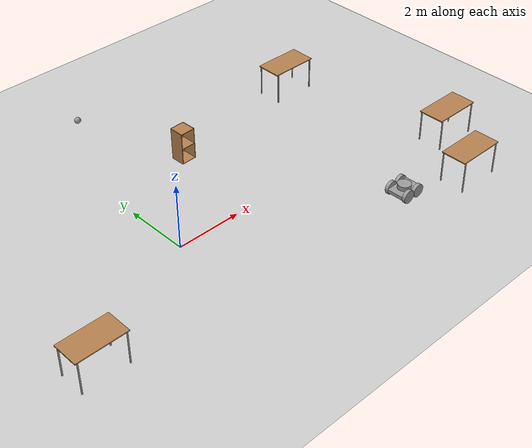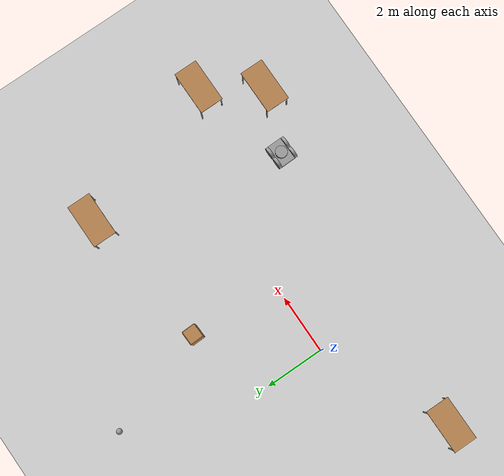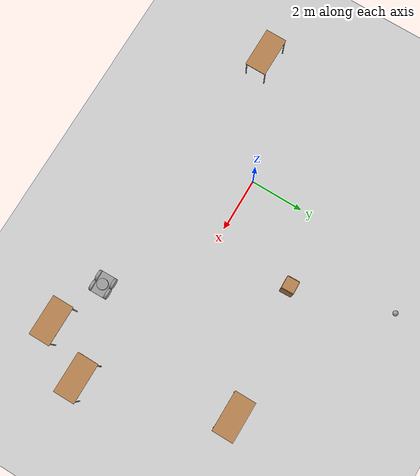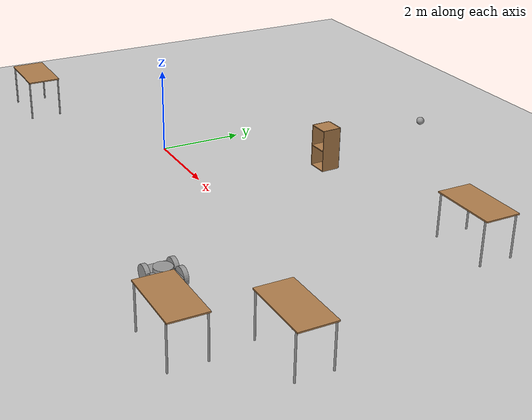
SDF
<sdf version="1.6">
 <world name="default">
  <model name="ground_plane">
   <static>1</static>
   <link name="link">
    <collision name="collision">
     <geometry><plane><normal>0 0 1</normal><size>100 100</size></plane></geometry>
     <surface><friction><ode><mu>100</mu><mu2>50</mu2></ode></friction></surface>
    </collision>
    <visual name="visual">
     <cast_shadows>0</cast_shadows>
     <geometry><plane><normal>0 0 1</normal><size>100 100</size></plane></geometry>
     <material>
      <script><uri>file://media/materials/scripts/gazebo.material</uri><name>Gazebo/Grey</name></script>
     </material>
    </visual>
   </link>
  </model>
  <model name="HumanoidRobot_0">
   <link name="link_15">
    <pose>0 0 -0.014438 0 -0 0</pose>
    <inertial>
     <mass>1</mass>
     <inertia>
      <ixx>0.166667</ixx>
      <ixy>0</ixy>
      <ixz>0</ixz>
      <iyy>0.166667</iyy>
      <iyz>0</iyz>
      <izz>0.166667</izz>
     </inertia>
    </inertial>
    <visual name="visual">
     <geometry><box><size>0.8 0.5 0.1</size></box></geometry>
     <material>
      <lighting>1</lighting>
      <script><uri>file://media/materials/scripts/gazebo.material</uri><name>Gazebo/Grey</name></script>
      <shader type="pixel"><normal_map>__default__</normal_map></shader>
      <ambient>0.3 0.3 0.3 1</ambient>
      <diffuse>0.7 0.7 0.7 1</diffuse>
      <specular>0.01 0.01 0.01 1</specular>
      <emissive>0 0 0 1</emissive>
     </material>
    </visual>
    <collision name="collision">
     <geometry><box><size>0.8 0.5 0.1</size></box></geometry>
     <surface>
      <friction>
       <ode><mu>1</mu><mu2>1</mu2><fdir1>0 0 0</fdir1><slip1>0</slip1><slip2>0</slip2></ode>
       <torsional>
        <coefficient>1</coefficient>
        <patch_radius>0</patch_radius>
        <surface_radius>0</surface_radius>
        <use_patch_radius>1</use_patch_radius>
        <ode><slip>0</slip></ode>
       </torsional>
      </friction>
      <bounce><restitution_coefficient>0</restitution_coefficient><threshold>1e+06</threshold></bounce>
      <contact>
       <collide_without_contact>0</collide_without_contact>
       <collide_without_contact_bitmask>1</collide_without_contact_bitmask>
       <collide_bitmask>1</collide_bitmask>
       <ode>
        <soft_cfm>0</soft_cfm>
        <soft_erp>0.2</soft_erp>
        <kp>1e+13</kp>
        <kd>1</kd>
        <max_vel>0.01</max_vel>
        <min_depth>0</min_depth>
       </ode>
       <bullet>
        <split_impulse>1</split_impulse>
        <split_impulse_penetration_threshold>-0.01</split_impulse_penetration_threshold>
        <soft_cfm>0</soft_cfm>
        <soft_erp>0.2</soft_erp>
        <kp>1e+13</kp>
        <kd>1</kd>
       </bullet>
      </contact>
     </surface>
    </collision>
   </link>
   <link name="link_17">
    <pose>0.2 -0.300019 -0.014438 1.5707 -0 0</pose>
    <inertial>
     <mass>1</mass>
     <inertia><ixx>0.145833</ixx><ixy>0</ixy><ixz>0</ixz><iyy>0.145833</iyy><iyz>0</iyz><izz>0.125</izz></inertia>
    </inertial>
    <visual name="visual">
     <geometry><cylinder><radius>0.2</radius><length>0.1</length></cylinder></geometry>
     <material>
      <lighting>1</lighting>
      <script><uri>file://media/materials/scripts/gazebo.material</uri><name>Gazebo/Grey</name></script>
      <shader type="pixel"><normal_map>__default__</normal_map></shader>
      <ambient>0.3 0.3 0.3 1</ambient>
      <diffuse>0.7 0.7 0.7 1</diffuse>
      <specular>0.01 0.01 0.01 1</specular>
      <emissive>0 0 0 1</emissive>
     </material>
    </visual>
    <collision name="collision">
     <geometry><cylinder><radius>0.2</radius><length>0.1</length></cylinder></geometry>
     <surface>
      <friction>
       <ode><mu>1</mu><mu2>1</mu2><fdir1>0 0 0</fdir1><slip1>0</slip1><slip2>0</slip2></ode>
       <torsional>
        <coefficient>1</coefficient>
        <patch_radius>0</patch_radius>
        <surface_radius>0</surface_radius>
        <use_patch_radius>1</use_patch_radius>
        <ode><slip>0</slip></ode>
       </torsional>
      </friction>
      <bounce><restitution_coefficient>0</restitution_coefficient><threshold>1e+06</threshold></bounce>
      <contact>
       <collide_without_contact>0</collide_without_contact>
       <collide_without_contact_bitmask>1</collide_without_contact_bitmask>
       <collide_bitmask>1</collide_bitmask>
       <ode>
        <soft_cfm>0</soft_cfm>
        <soft_erp>0.2</soft_erp>
        <kp>1e+13</kp>
        <kd>1</kd>
        <max_vel>0.01</max_vel>
        <min_depth>0</min_depth>
       </ode>
       <bullet>
        <split_impulse>1</split_impulse>
        <split_impulse_penetration_threshold>-0.01</split_impulse_penetration_threshold>
        <soft_cfm>0</soft_cfm>
        <soft_erp>0.2</soft_erp>
        <kp>1e+13</kp>
        <kd>1</kd>
       </bullet>
      </contact>
     </surface>
    </collision>
   </link>
   <link name="link_17_clone">
    <pose>0.2 0.300019 -0.014438 1.5707 -0 0</pose>
    <inertial>
     <mass>1</mass>
     <inertia><ixx>0.145833</ixx><ixy>0</ixy><ixz>0</ixz><iyy>0.145833</iyy><iyz>0</iyz><izz>0.125</izz></inertia>
    </inertial>
    <visual name="visual">
     <geometry><cylinder><radius>0.2</radius><length>0.1</length></cylinder></geometry>
     <material>
      <lighting>1</lighting>
      <script><uri>file://media/materials/scripts/gazebo.material</uri><name>Gazebo/Grey</name></script>
      <shader type="pixel"><normal_map>__default__</normal_map></shader>
      <ambient>0.3 0.3 0.3 1</ambient>
      <diffuse>0.7 0.7 0.7 1</diffuse>
      <specular>0.01 0.01 0.01 1</specular>
      <emissive>0 0 0 1</emissive>
     </material>
    </visual>
    <collision name="collision">
     <geometry><cylinder><radius>0.2</radius><length>0.1</length></cylinder></geometry>
     <surface>
      <friction>
       <ode><mu>1</mu><mu2>1</mu2><fdir1>0 0 0</fdir1><slip1>0</slip1><slip2>0</slip2></ode>
       <torsional>
        <coefficient>1</coefficient>
        <patch_radius>0</patch_radius>
        <surface_radius>0</surface_radius>
        <use_patch_radius>1</use_patch_radius>
        <ode><slip>0</slip></ode>
       </torsional>
      </friction>
      <bounce><restitution_coefficient>0</restitution_coefficient><threshold>1e+06</threshold></bounce>
      <contact>
       <collide_without_contact>0</collide_without_contact>
       <collide_without_contact_bitmask>1</collide_without_contact_bitmask>
       <collide_bitmask>1</collide_bitmask>
       <ode>
        <soft_cfm>0</soft_cfm>
        <soft_erp>0.2</soft_erp>
        <kp>1e+13</kp>
        <kd>1</kd>
        <max_vel>0.01</max_vel>
        <min_depth>0</min_depth>
       </ode>
       <bullet>
        <split_impulse>1</split_impulse>
        <split_impulse_penetration_threshold>-0.01</split_impulse_penetration_threshold>
        <soft_cfm>0</soft_cfm>
        <soft_erp>0.2</soft_erp>
        <kp>1e+13</kp>
        <kd>1</kd>
       </bullet>
      </contact>
     </surface>
    </collision>
   </link>
   <link name="link_17_clone_0">
    <pose>-0.2 -0.300019 -0.014438 1.5707 -0 0</pose>
    <inertial>
     <mass>1</mass>
     <inertia><ixx>0.145833</ixx><ixy>0</ixy><ixz>0</ixz><iyy>0.145833</iyy><iyz>0</iyz><izz>0.125</izz></inertia>
    </inertial>
    <visual name="visual">
     <geometry><cylinder><radius>0.2</radius><length>0.1</length></cylinder></geometry>
     <material>
      <lighting>1</lighting>
      <script><uri>file://media/materials/scripts/gazebo.material</uri><name>Gazebo/Grey</name></script>
      <shader type="pixel"><normal_map>__default__</normal_map></shader>
      <ambient>0.3 0.3 0.3 1</ambient>
      <diffuse>0.7 0.7 0.7 1</diffuse>
      <specular>0.01 0.01 0.01 1</specular>
      <emissive>0 0 0 1</emissive>
     </material>
    </visual>
    <collision name="collision">
     <geometry><cylinder><radius>0.2</radius><length>0.1</length></cylinder></geometry>
     <surface>
      <friction>
       <ode><mu>1</mu><mu2>1</mu2><fdir1>0 0 0</fdir1><slip1>0</slip1><slip2>0</slip2></ode>
       <torsional>
        <coefficient>1</coefficient>
        <patch_radius>0</patch_radius>
        <surface_radius>0</surface_radius>
        <use_patch_radius>1</use_patch_radius>
        <ode><slip>0</slip></ode>
       </torsional>
      </friction>
      <bounce><restitution_coefficient>0</restitution_coefficient><threshold>1e+06</threshold></bounce>
      <contact>
       <collide_without_contact>0</collide_without_contact>
       <collide_without_contact_bitmask>1</collide_without_contact_bitmask>
       <collide_bitmask>1</collide_bitmask>
       <ode>
        <soft_cfm>0</soft_cfm>
        <soft_erp>0.2</soft_erp>
        <kp>1e+13</kp>
        <kd>1</kd>
        <max_vel>0.01</max_vel>
        <min_depth>0</min_depth>
       </ode>
       <bullet>
        <split_impulse>1</split_impulse>
        <split_impulse_penetration_threshold>-0.01</split_impulse_penetration_threshold>
        <soft_cfm>0</soft_cfm>
        <soft_erp>0.2</soft_erp>
        <kp>1e+13</kp>
        <kd>1</kd>
       </bullet>
      </contact>
     </surface>
    </collision>
   </link>
   <link name="link_17_clone_1">
    <pose>-0.2 0.300019 -0.014438 1.5707 -0 0</pose>
    <inertial>
     <mass>1</mass>
     <inertia><ixx>0.145833</ixx><ixy>0</ixy><ixz>0</ixz><iyy>0.145833</iyy><iyz>0</iyz><izz>0.125</izz></inertia>
    </inertial>
    <visual name="visual">
     <geometry><cylinder><radius>0.2</radius><length>0.1</length></cylinder></geometry>
     <material>
      <lighting>1</lighting>
      <script><uri>file://media/materials/scripts/gazebo.material</uri><name>Gazebo/Grey</name></script>
      <shader type="pixel"><normal_map>__default__</normal_map></shader>
      <ambient>0.3 0.3 0.3 1</ambient>
      <diffuse>0.7 0.7 0.7 1</diffuse>
      <specular>0.01 0.01 0.01 1</specular>
      <emissive>0 0 0 1</emissive>
     </material>
    </visual>
    <collision name="collision">
     <geometry><cylinder><radius>0.2</radius><length>0.1</length></cylinder></geometry>
     <surface>
      <friction>
       <ode><mu>1</mu><mu2>1</mu2><fdir1>0 0 0</fdir1><slip1>0</slip1><slip2>0</slip2></ode>
       <torsional>
        <coefficient>1</coefficient>
        <patch_radius>0</patch_radius>
        <surface_radius>0</surface_radius>
        <use_patch_radius>1</use_patch_radius>
        <ode><slip>0</slip></ode>
       </torsional>
      </friction>
      <bounce><restitution_coefficient>0</restitution_coefficient><threshold>1e+06</threshold></bounce>
      <contact>
       <collide_without_contact>0</collide_without_contact>
       <collide_without_contact_bitmask>1</collide_without_contact_bitmask>
       <collide_bitmask>1</collide_bitmask>
       <ode>
        <soft_cfm>0</soft_cfm>
        <soft_erp>0.2</soft_erp>
        <kp>1e+13</kp>
        <kd>1</kd>
        <max_vel>0.01</max_vel>
        <min_depth>0</min_depth>
       </ode>
       <bullet>
        <split_impulse>1</split_impulse>
        <split_impulse_penetration_threshold>-0.01</split_impulse_penetration_threshold>
        <soft_cfm>0</soft_cfm>
        <soft_erp>0.2</soft_erp>
        <kp>1e+13</kp>
        <kd>1</kd>
       </bullet>
      </contact>
     </surface>
    </collision>
   </link>
   <link name="link_18">
    <pose>0 0 0.072192 0 -0 0</pose>
    <inertial>
     <mass>1</mass>
     <inertia><ixx>0.145833</ixx><ixy>0</ixy><ixz>0</ixz><iyy>0.145833</iyy><iyz>0</iyz><izz>0.125</izz></inertia>
    </inertial>
    <visual name="visual">
     <geometry><cylinder><radius>0.2</radius><length>0.2</length></cylinder></geometry>
     <material>
      <lighting>1</lighting>
      <script><uri>file://media/materials/scripts/gazebo.material</uri><name>Gazebo/Grey</name></script>
      <shader type="pixel"><normal_map>__default__</normal_map></shader>
      <ambient>0.3 0.3 0.3 1</ambient>
      <diffuse>0.7 0.7 0.7 1</diffuse>
      <specular>0.01 0.01 0.01 1</specular>
      <emissive>0 0 0 1</emissive>
     </material>
    </visual>
    <collision name="collision">
     <geometry><cylinder><radius>0.2</radius><length>0.2</length></cylinder></geometry>
     <surface>
      <friction>
       <ode><mu>1</mu><mu2>1</mu2><fdir1>0 0 0</fdir1><slip1>0</slip1><slip2>0</slip2></ode>
       <torsional>
        <coefficient>1</coefficient>
        <patch_radius>0</patch_radius>
        <surface_radius>0</surface_radius>
        <use_patch_radius>1</use_patch_radius>
        <ode><slip>0</slip></ode>
       </torsional>
      </friction>
      <bounce><restitution_coefficient>0</restitution_coefficient><threshold>1e+06</threshold></bounce>
      <contact>
       <collide_without_contact>0</collide_without_contact>
       <collide_without_contact_bitmask>1</collide_without_contact_bitmask>
       <collide_bitmask>1</collide_bitmask>
       <ode>
        <soft_cfm>0</soft_cfm>
        <soft_erp>0.2</soft_erp>
        <kp>1e+13</kp>
        <kd>1</kd>
        <max_vel>0.01</max_vel>
        <min_depth>0</min_depth>
       </ode>
       <bullet>
        <split_impulse>1</split_impulse>
        <split_impulse_penetration_threshold>-0.01</split_impulse_penetration_threshold>
        <soft_cfm>0</soft_cfm>
        <soft_erp>0.2</soft_erp>
        <kp>1e+13</kp>
        <kd>1</kd>
       </bullet>
      </contact>
     </surface>
    </collision>
   </link>
   <joint name="link_15_JOINT_1" type="revolute">
    <parent>link_15</parent>
    <child>link_17</child>
    <axis>
     <xyz>0 0 1</xyz>
     <use_parent_model_frame>0</use_parent_model_frame>
     <limit>
      <lower>-1.79769e+308</lower>
      <upper>1.79769e+308</upper>
      <effort>-1</effort>
      <velocity>-1</velocity>
     </limit>
     <dynamics>
      <spring_reference>0</spring_reference>
      <spring_stiffness>0</spring_stiffness>
      <damping>0</damping>
     </dynamics>
    </axis>
    <physics>
     <ode><limit><cfm>0</cfm><erp>0.2</erp></limit><suspension><cfm>0</cfm><erp>0.2</erp></suspension></ode>
    </physics>
   </joint>
   <joint name="link_15_JOINT_2" type="revolute">
    <parent>link_15</parent>
    <child>link_17_clone</child>
    <axis>
     <xyz>0 0 1</xyz>
     <use_parent_model_frame>0</use_parent_model_frame>
     <limit>
      <lower>-1.79769e+308</lower>
      <upper>1.79769e+308</upper>
      <effort>-1</effort>
      <velocity>-1</velocity>
     </limit>
     <dynamics>
      <spring_reference>0</spring_reference>
      <spring_stiffness>0</spring_stiffness>
      <damping>0</damping>
     </dynamics>
    </axis>
    <physics>
     <ode><limit><cfm>0</cfm><erp>0.2</erp></limit><suspension><cfm>0</cfm><erp>0.2</erp></suspension></ode>
    </physics>
   </joint>
   <joint name="link_15_JOINT_3" type="revolute">
    <parent>link_15</parent>
    <child>link_17_clone_0</child>
    <axis>
     <xyz>0 0 1</xyz>
     <use_parent_model_frame>0</use_parent_model_frame>
     <limit>
      <lower>-1.79769e+308</lower>
      <upper>1.79769e+308</upper>
      <effort>-1</effort>
      <velocity>-1</velocity>
     </limit>
     <dynamics>
      <spring_reference>0</spring_reference>
      <spring_stiffness>0</spring_stiffness>
      <damping>0</damping>
     </dynamics>
    </axis>
    <physics>
     <ode><limit><cfm>0</cfm><erp>0.2</erp></limit><suspension><cfm>0</cfm><erp>0.2</erp></suspension></ode>
    </physics>
   </joint>
   <joint name="link_15_JOINT_4" type="revolute">
    <parent>link_15</parent>
    <child>link_17_clone_1</child>
    <axis>
     <xyz>0 0 1</xyz>
     <use_parent_model_frame>0</use_parent_model_frame>
     <limit>
      <lower>-1.79769e+308</lower>
      <upper>1.79769e+308</upper>
      <effort>-1</effort>
      <velocity>-1</velocity>
     </limit>
     <dynamics>
      <spring_reference>0</spring_reference>
      <spring_stiffness>0</spring_stiffness>
      <damping>0</damping>
     </dynamics>
    </axis>
    <physics>
     <ode><limit><cfm>0</cfm><erp>0.2</erp></limit><suspension><cfm>0</cfm><erp>0.2</erp></suspension></ode>
    </physics>
   </joint>
   <joint name="link_15_JOINT_6" type="revolute">
    <parent>link_15</parent>
    <child>link_18</child>
    <axis>
     <xyz>0 0 1</xyz>
     <use_parent_model_frame>0</use_parent_model_frame>
     <limit>
      <lower>-1.79769e+308</lower>
      <upper>1.79769e+308</upper>
      <effort>-1</effort>
      <velocity>-1</velocity>
     </limit>
     <dynamics>
      <spring_reference>0</spring_reference>
      <spring_stiffness>0</spring_stiffness>
      <damping>0</damping>
     </dynamics>
    </axis>
    <physics>
     <ode><limit><cfm>0</cfm><erp>0.2</erp></limit><suspension><cfm>0</cfm><erp>0.2</erp></suspension></ode>
    </physics>
   </joint>
   <static>0</static>
   <pose>5.89182 -2.57077 0.214438 4e-06 -1.7e-05 0.022156</pose>
  </model>
  <model name="table">
   <static>1</static>
   <link name="link">
    <collision name="surface">
     <pose>0 0 1 0 -0 0</pose>
     <geometry><box><size>1.5 0.8 0.03</size></box></geometry>
     <surface><friction><ode><mu>0.6</mu><mu2>0.6</mu2></ode></friction></surface>
    </collision>
    <visual name="visual1">
     <pose>0 0 1 0 -0 0</pose>
     <geometry><box><size>1.5 0.8 0.03</size></box></geometry>
     <material>
      <script><uri>file://media/materials/scripts/gazebo.material</uri><name>Gazebo/Wood</name></script>
     </material>
    </visual>
    <collision name="front_left_leg">
     <pose>0.68 0.38 0.5 0 -0 0</pose>
     <geometry><cylinder><radius>0.02</radius><length>1</length></cylinder></geometry>
    </collision>
    <visual name="front_left_leg">
     <pose>0.68 0.38 0.5 0 -0 0</pose>
     <geometry><cylinder><radius>0.02</radius><length>1</length></cylinder></geometry>
     <material>
      <script><uri>file://media/materials/scripts/gazebo.material</uri><name>Gazebo/Grey</name></script>
     </material>
    </visual>
    <collision name="front_right_leg">
     <pose>0.68 -0.38 0.5 0 -0 0</pose>
     <geometry><cylinder><radius>0.02</radius><length>1</length></cylinder></geometry>
    </collision>
    <visual name="front_right_leg">
     <pose>0.68 -0.38 0.5 0 -0 0</pose>
     <geometry><cylinder><radius>0.02</radius><length>1</length></cylinder></geometry>
     <material>
      <script><uri>file://media/materials/scripts/gazebo.material</uri><name>Gazebo/Grey</name></script>
     </material>
    </visual>
    <collision name="back_right_leg">
     <pose>-0.68 -0.38 0.5 0 -0 0</pose>
     <geometry><cylinder><radius>0.02</radius><length>1</length></cylinder></geometry>
    </collision>
    <visual name="back_right_leg">
     <pose>-0.68 -0.38 0.5 0 -0 0</pose>
     <geometry><cylinder><radius>0.02</radius><length>1</length></cylinder></geometry>
     <material>
      <script><uri>file://media/materials/scripts/gazebo.material</uri><name>Gazebo/Grey</name></script>
     </material>
    </visual>
    <collision name="back_left_leg">
     <pose>-0.68 0.38 0.5 0 -0 0</pose>
     <geometry><cylinder><radius>0.02</radius><length>1</length></cylinder></geometry>
    </collision>
    <visual name="back_left_leg">
     <pose>-0.68 0.38 0.5 0 -0 0</pose>
     <geometry><cylinder><radius>0.02</radius><length>1</length></cylinder></geometry>
     <material>
      <script><uri>file://media/materials/scripts/gazebo.material</uri><name>Gazebo/Grey</name></script>
     </material>
    </visual>
   </link>
   <pose>7.82462 -3.25854 0 0 -0 0</pose>
  </model>
  <model name="table_0">
   <static>1</static>
   <link name="link">
    <collision name="surface">
     <pose>0 0 1 0 -0 0</pose>
     <geometry><box><size>1.5 0.8 0.03</size></box></geometry>
     <surface><friction><ode><mu>0.6</mu><mu2>0.6</mu2></ode></friction></surface>
    </collision>
    <visual name="visual1">
     <pose>0 0 1 0 -0 0</pose>
     <geometry><box><size>1.5 0.8 0.03</size></box></geometry>
     <material>
      <script><uri>file://media/materials/scripts/gazebo.material</uri><name>Gazebo/Wood</name></script>
     </material>
    </visual>
    <collision name="front_left_leg">
     <pose>0.68 0.38 0.5 0 -0 0</pose>
     <geometry><cylinder><radius>0.02</radius><length>1</length></cylinder></geometry>
    </collision>
    <visual name="front_left_leg">
     <pose>0.68 0.38 0.5 0 -0 0</pose>
     <geometry><cylinder><radius>0.02</radius><length>1</length></cylinder></geometry>
     <material>
      <script><uri>file://media/materials/scripts/gazebo.material</uri><name>Gazebo/Grey</name></script>
     </material>
    </visual>
    <collision name="front_right_leg">
     <pose>0.68 -0.38 0.5 0 -0 0</pose>
     <geometry><cylinder><radius>0.02</radius><length>1</length></cylinder></geometry>
    </collision>
    <visual name="front_right_leg">
     <pose>0.68 -0.38 0.5 0 -0 0</pose>
     <geometry><cylinder><radius>0.02</radius><length>1</length></cylinder></geometry>
     <material>
      <script><uri>file://media/materials/scripts/gazebo.material</uri><name>Gazebo/Grey</name></script>
     </material>
    </visual>
    <collision name="back_right_leg">
     <pose>-0.68 -0.38 0.5 0 -0 0</pose>
     <geometry><cylinder><radius>0.02</radius><length>1</length></cylinder></geometry>
    </collision>
    <visual name="back_right_leg">
     <pose>-0.68 -0.38 0.5 0 -0 0</pose>
     <geometry><cylinder><radius>0.02</radius><length>1</length></cylinder></geometry>
     <material>
      <script><uri>file://media/materials/scripts/gazebo.material</uri><name>Gazebo/Grey</name></script>
     </material>
    </visual>
    <collision name="back_left_leg">
     <pose>-0.68 0.38 0.5 0 -0 0</pose>
     <geometry><cylinder><radius>0.02</radius><length>1</length></cylinder></geometry>
    </collision>
    <visual name="back_left_leg">
     <pose>-0.68 0.38 0.5 0 -0 0</pose>
     <geometry><cylinder><radius>0.02</radius><length>1</length></cylinder></geometry>
     <material>
      <script><uri>file://media/materials/scripts/gazebo.material</uri><name>Gazebo/Grey</name></script>
     </material>
    </visual>
   </link>
   <pose>-4.09861 -1.93857 0 0 -0 0</pose>
  </model>
  <model name="table_1">
   <static>1</static>
   <link name="link">
    <collision name="surface">
     <pose>0 0 1 0 -0 0</pose>
     <geometry><box><size>1.5 0.8 0.03</size></box></geometry>
     <surface><friction><ode><mu>0.6</mu><mu2>0.6</mu2></ode></friction></surface>
    </collision>
    <visual name="visual1">
     <pose>0 0 1 0 -0 0</pose>
     <geometry><box><size>1.5 0.8 0.03</size></box></geometry>
     <material>
      <script><uri>file://media/materials/scripts/gazebo.material</uri><name>Gazebo/Wood</name></script>
     </material>
    </visual>
    <collision name="front_left_leg">
     <pose>0.68 0.38 0.5 0 -0 0</pose>
     <geometry><cylinder><radius>0.02</radius><length>1</length></cylinder></geometry>
    </collision>
    <visual name="front_left_leg">
     <pose>0.68 0.38 0.5 0 -0 0</pose>
     <geometry><cylinder><radius>0.02</radius><length>1</length></cylinder></geometry>
     <material>
      <script><uri>file://media/materials/scripts/gazebo.material</uri><name>Gazebo/Grey</name></script>
     </material>
    </visual>
    <collision name="front_right_leg">
     <pose>0.68 -0.38 0.5 0 -0 0</pose>
     <geometry><cylinder><radius>0.02</radius><length>1</length></cylinder></geometry>
    </collision>
    <visual name="front_right_leg">
     <pose>0.68 -0.38 0.5 0 -0 0</pose>
     <geometry><cylinder><radius>0.02</radius><length>1</length></cylinder></geometry>
     <material>
      <script><uri>file://media/materials/scripts/gazebo.material</uri><name>Gazebo/Grey</name></script>
     </material>
    </visual>
    <collision name="back_right_leg">
     <pose>-0.68 -0.38 0.5 0 -0 0</pose>
     <geometry><cylinder><radius>0.02</radius><length>1</length></cylinder></geometry>
    </collision>
    <visual name="back_right_leg">
     <pose>-0.68 -0.38 0.5 0 -0 0</pose>
     <geometry><cylinder><radius>0.02</radius><length>1</length></cylinder></geometry>
     <material>
      <script><uri>file://media/materials/scripts/gazebo.material</uri><name>Gazebo/Grey</name></script>
     </material>
    </visual>
    <collision name="back_left_leg">
     <pose>-0.68 0.38 0.5 0 -0 0</pose>
     <geometry><cylinder><radius>0.02</radius><length>1</length></cylinder></geometry>
    </collision>
    <visual name="back_left_leg">
     <pose>-0.68 0.38 0.5 0 -0 0</pose>
     <geometry><cylinder><radius>0.02</radius><length>1</length></cylinder></geometry>
     <material>
      <script><uri>file://media/materials/scripts/gazebo.material</uri><name>Gazebo/Grey</name></script>
     </material>
    </visual>
   </link>
   <pose>7.36272 3.5908 0 0 -0 0</pose>
  </model>
  <model name="table_clone">
   <static>1</static>
   <link name="link">
    <collision name="surface">
     <pose>0 0 1 0 -0 0</pose>
     <geometry><box><size>1.5 0.8 0.03</size></box></geometry>
     <surface><friction><ode><mu>0.6</mu><mu2>0.6</mu2></ode></friction></surface>
    </collision>
    <visual name="visual1">
     <pose>0 0 1 0 -0 0</pose>
     <geometry><box><size>1.5 0.8 0.03</size></box></geometry>
     <material>
      <script><uri>file://media/materials/scripts/gazebo.material</uri><name>Gazebo/Wood</name></script>
     </material>
    </visual>
    <collision name="front_left_leg">
     <pose>0.68 0.38 0.5 0 -0 0</pose>
     <geometry><cylinder><radius>0.02</radius><length>1</length></cylinder></geometry>
    </collision>
    <visual name="front_left_leg">
     <pose>0.68 0.38 0.5 0 -0 0</pose>
     <geometry><cylinder><radius>0.02</radius><length>1</length></cylinder></geometry>
     <material>
      <script><uri>file://media/materials/scripts/gazebo.material</uri><name>Gazebo/Grey</name></script>
     </material>
    </visual>
    <collision name="front_right_leg">
     <pose>0.68 -0.38 0.5 0 -0 0</pose>
     <geometry><cylinder><radius>0.02</radius><length>1</length></cylinder></geometry>
    </collision>
    <visual name="front_right_leg">
     <pose>0.68 -0.38 0.5 0 -0 0</pose>
     <geometry><cylinder><radius>0.02</radius><length>1</length></cylinder></geometry>
     <material>
      <script><uri>file://media/materials/scripts/gazebo.material</uri><name>Gazebo/Grey</name></script>
     </material>
    </visual>
    <collision name="back_right_leg">
     <pose>-0.68 -0.38 0.5 0 -0 0</pose>
     <geometry><cylinder><radius>0.02</radius><length>1</length></cylinder></geometry>
    </collision>
    <visual name="back_right_leg">
     <pose>-0.68 -0.38 0.5 0 -0 0</pose>
     <geometry><cylinder><radius>0.02</radius><length>1</length></cylinder></geometry>
     <material>
      <script><uri>file://media/materials/scripts/gazebo.material</uri><name>Gazebo/Grey</name></script>
     </material>
    </visual>
    <collision name="back_left_leg">
     <pose>-0.68 0.38 0.5 0 -0 0</pose>
     <geometry><cylinder><radius>0.02</radius><length>1</length></cylinder></geometry>
    </collision>
    <visual name="back_left_leg">
     <pose>-0.68 0.38 0.5 0 -0 0</pose>
     <geometry><cylinder><radius>0.02</radius><length>1</length></cylinder></geometry>
     <material>
      <script><uri>file://media/materials/scripts/gazebo.material</uri><name>Gazebo/Grey</name></script>
     </material>
    </visual>
   </link>
   <pose>8.98172 -1.52518 0 0 -0 0</pose>
  </model>
  <model name="cabinet">
   <static>1</static>
   <link name="cabinet_bottom_plate">
    <inertial>
     <pose>0 0 -1 0 -0 0</pose>
     <inertia><ixx>2.05</ixx><ixy>0</ixy><ixz>0</ixz><iyy>2.05</iyy><iyz>0</iyz><izz>2.05</izz></inertia>
     <mass>25</mass>
    </inertial>
    <collision name="cabinet_bottom_plate_geom">
     <pose>0 0 0.01 0 -0 0</pose>
     <geometry><box><size>0.45 0.45 0.02</size></box></geometry>
    </collision>
    <visual name="cabinet_bottom_plate_geom_visual">
     <pose>0 0 0.01 0 -0 0</pose>
     <geometry><box><size>0.45 0.45 0.02</size></box></geometry>
     <material>
      <script><uri>file://media/materials/scripts/gazebo.material</uri><name>Gazebo/Wood</name></script>
     </material>
    </visual>
    <collision name="cabinet_bottom_plate_geom_cabinet_back_plate">
     <pose>0.235 0 0.51 0 -0 0</pose>
     <geometry><box><size>0.02 0.45 1.02</size></box></geometry>
    </collision>
    <visual name="cabinet_bottom_plate_geom_cabinet_back_plate_visual">
     <pose>0.235 0 0.51 0 -0 0</pose>
     <geometry><box><size>0.02 0.45 1.02</size></box></geometry>
     <material>
      <script><uri>file://media/materials/scripts/gazebo.material</uri><name>Gazebo/Wood</name></script>
     </material>
    </visual>
    <collision name="cabinet_bottom_plate_geom_cabinet_left_plate">
     <pose>0 0.235 0.51 0 -0 0</pose>
     <geometry><box><size>0.45 0.02 1.02</size></box></geometry>
    </collision>
    <visual name="cabinet_bottom_plate_geom_cabinet_left_plate_visual">
     <pose>0 0.235 0.51 0 -0 0</pose>
     <geometry><box><size>0.45 0.02 1.02</size></box></geometry>
     <material>
      <script><uri>file://media/materials/scripts/gazebo.material</uri><name>Gazebo/Wood</name></script>
     </material>
    </visual>
    <collision name="cabinet_bottom_plate_geom_cabinet_middle_plate">
     <pose>0 0 0.51 0 -0 0</pose>
     <geometry><box><size>0.45 0.45 0.02</size></box></geometry>
    </collision>
    <visual name="cabinet_bottom_plate_geom_cabinet_middle_plate_visual">
     <pose>0 0 0.51 0 -0 0</pose>
     <geometry><box><size>0.45 0.45 0.02</size></box></geometry>
     <material>
      <script><uri>file://media/materials/scripts/gazebo.material</uri><name>Gazebo/Wood</name></script>
     </material>
    </visual>
    <collision name="cabinet_bottom_plate_geom_cabinet_right_plate">
     <pose>0 -0.235 0.51 0 -0 0</pose>
     <geometry><box><size>0.45 0.02 1.02</size></box></geometry>
    </collision>
    <visual name="cabinet_bottom_plate_geom_cabinet_right_plate_visual">
     <pose>0 -0.235 0.51 0 -0 0</pose>
     <geometry><box><size>0.45 0.02 1.02</size></box></geometry>
     <material>
      <script><uri>file://media/materials/scripts/gazebo.material</uri><name>Gazebo/Wood</name></script>
     </material>
    </visual>
    <collision name="cabinet_bottom_plate_geom_cabinet_top_plate">
     <pose>0 0 1.01 0 -0 0</pose>
     <geometry><box><size>0.45 0.45 0.02</size></box></geometry>
    </collision>
    <visual name="cabinet_bottom_plate_geom_cabinet_top_plate_visual">
     <pose>0 0 1.01 0 -0 0</pose>
     <geometry><box><size>0.45 0.45 0.02</size></box></geometry>
     <material>
      <script><uri>file://media/materials/scripts/gazebo.material</uri><name>Gazebo/Wood</name></script>
     </material>
    </visual>
   </link>
   <pose>2.65405 2.99432 0 0 -0 1.60247</pose>
  </model>
  <model name="my_ball">
   <link name="link_0">
    <inertial>
     <mass>1</mass>
     <inertia><ixx>0.1</ixx><ixy>0</ixy><ixz>0</ixz><iyy>0.1</iyy><iyz>0</iyz><izz>0.1</izz></inertia>
    </inertial>
    <visual name="visual">
     <geometry><sphere><radius>0.1</radius></sphere></geometry>
     <material>
      <lighting>1</lighting>
      <script><uri>file://media/materials/scripts/gazebo.material</uri><name>Gazebo/Grey</name></script>
      <ambient>1 1 1 1</ambient>
      <diffuse>1 1 1 1</diffuse>
      <specular>1 1 1 1</specular>
      <emissive>1 1 1 1</emissive>
      <shader type="vertex"><normal_map>__default__</normal_map></shader>
     </material>
    </visual>
    <collision name="collision">
     <geometry><sphere><radius>0.1</radius></sphere></geometry>
     <surface>
      <friction>
       <ode><mu>1</mu><mu2>1</mu2><fdir1>0 0 0</fdir1><slip1>0</slip1><slip2>0</slip2></ode>
       <torsional>
        <coefficient>1</coefficient>
        <patch_radius>0</patch_radius>
        <surface_radius>0</surface_radius>
        <use_patch_radius>1</use_patch_radius>
        <ode><slip>0</slip></ode>
       </torsional>
      </friction>
      <bounce><restitution_coefficient>0</restitution_coefficient><threshold>1e+06</threshold></bounce>
      <contact>
       <collide_without_contact>0</collide_without_contact>
       <collide_without_contact_bitmask>1</collide_without_contact_bitmask>
       <collide_bitmask>1</collide_bitmask>
       <ode>
        <soft_cfm>0</soft_cfm>
        <soft_erp>0.2</soft_erp>
        <kp>1e+13</kp>
        <kd>1</kd>
        <max_vel>0.01</max_vel>
        <min_depth>0</min_depth>
       </ode>
       <bullet>
        <split_impulse>1</split_impulse>
        <split_impulse_penetration_threshold>-0.01</split_impulse_penetration_threshold>
        <soft_cfm>0</soft_cfm>
        <soft_erp>0.2</soft_erp>
        <kp>1e+13</kp>
        <kd>1</kd>
       </bullet>
      </contact>
     </surface>
    </collision>
   </link>
   <static>0</static>
   <pose>1.50119 6.62613 0.1 0 -0 0</pose>
  </model>
 </world>
</sdf>
